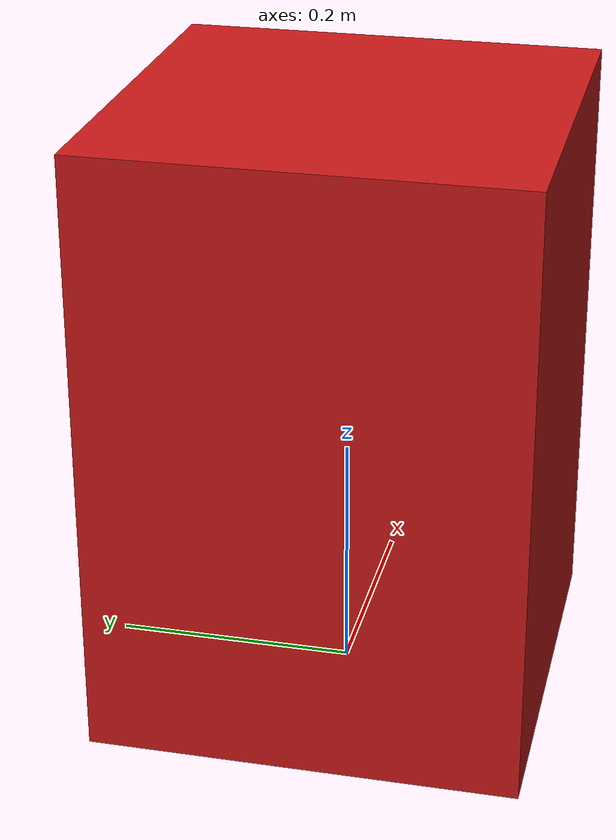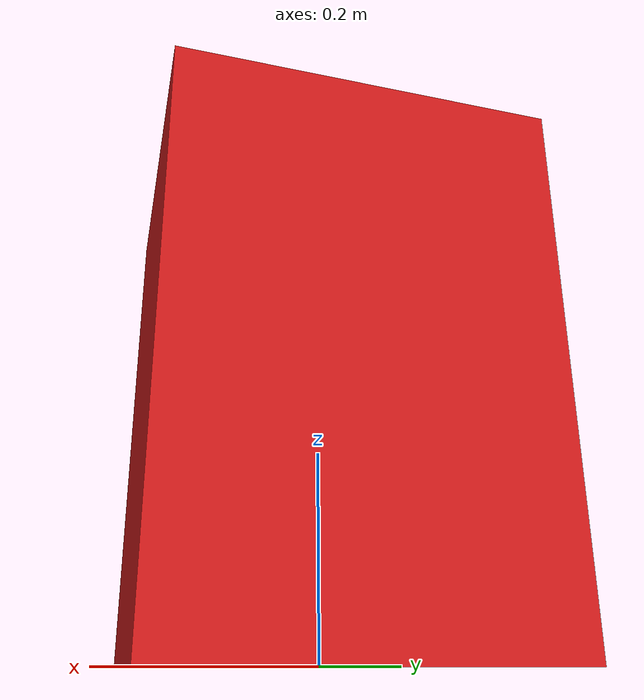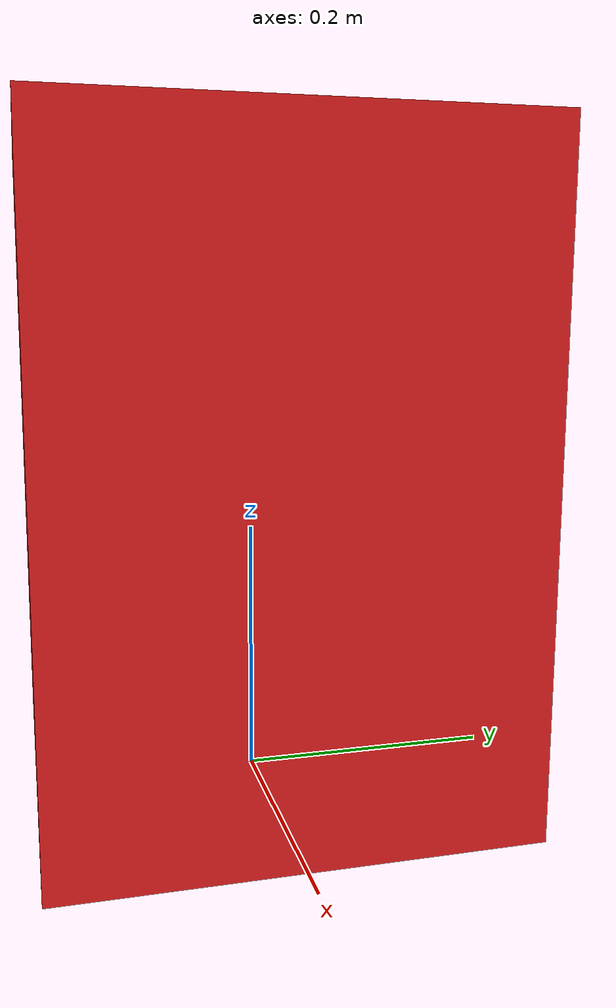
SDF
<?xml version="1.0" ?>
<sdf version="1.6">
  <model name="lab_box">
    <static>false</static>
    <link name="link">
      <pose>0 0 0.25 0 0 0</pose>
      <collision name="collision">
        <geometry>
          <box><size>0.35 0.35 0.5</size></box>
        </geometry>
      </collision>
      <visual name="visual">
        <geometry>
          <box><size>0.35 0.35 0.5</size></box>
        </geometry>
        <material>
          <ambient>0.8 0.1 0.1 1</ambient>
          <diffuse>0.8 0.1 0.1 1</diffuse>
        </material>
      </visual>
      <inertial>
        <mass>1.0</mass>
        <inertia>
          <ixx>0.02</ixx><iyy>0.02</iyy><izz>0.02</izz>
          <ixy>0</ixy><ixz>0</ixz><iyz>0</iyz>
        </inertia>
      </inertial>
    </link>
  </model>
</sdf>
